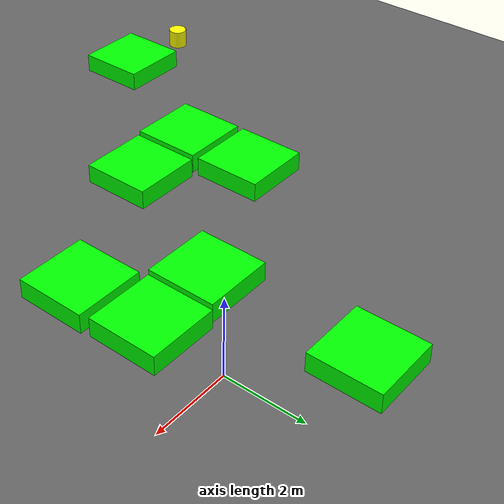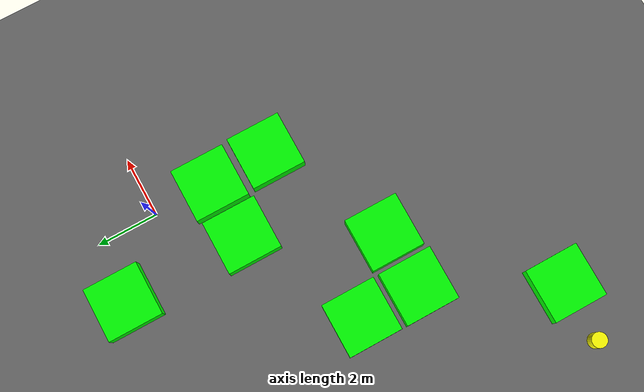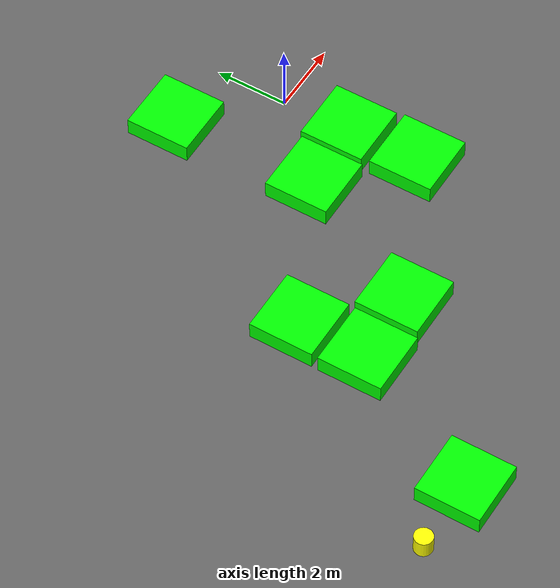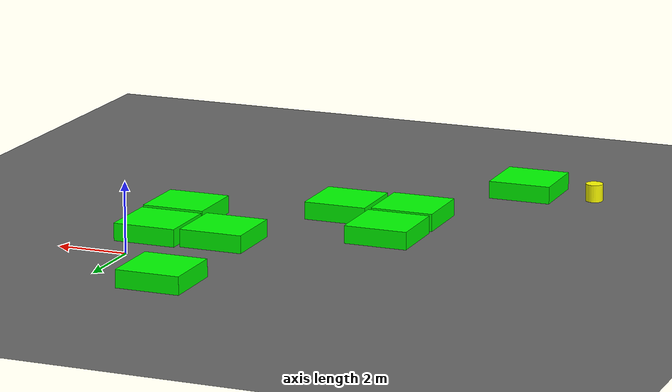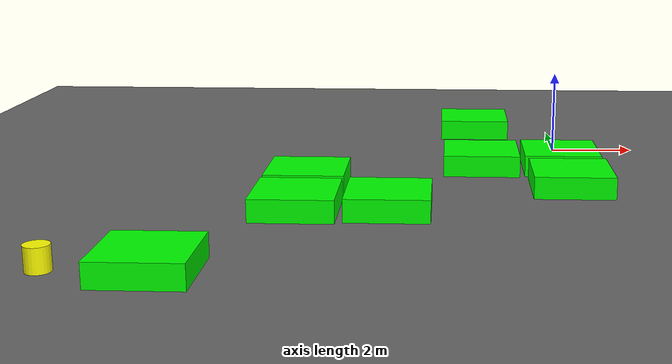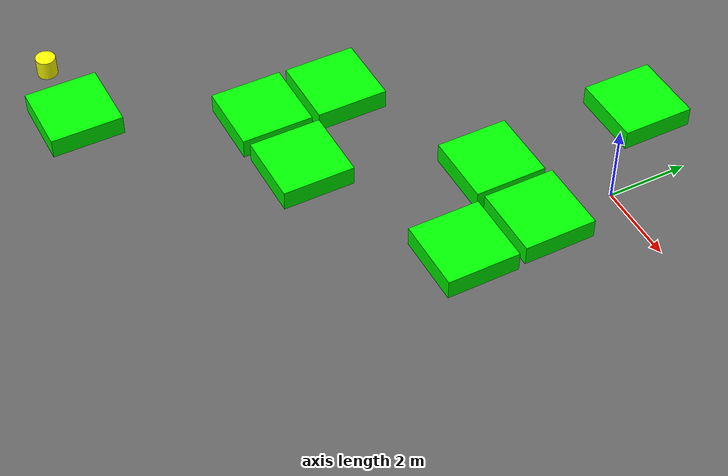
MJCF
<mujoco model="randommix_039_lvl0_standard_obs8_d3long_seed1092">
    <compiler angle="degree" coordinate="local" inertiafromgeom="true"/>
    <option integrator="RK4" timestep="0.01"/>

    <asset>
        <texture builtin="gradient" height="100" rgb1="0.6 0.8 1" rgb2="0 0 0" type="skybox" width="100"/>
        <texture name="floor_texture" type="2d" builtin="checker" width="100" height="100" rgb1="0 0 0" rgb2="0.8 0.8 0.8"/>
        <material name="MatPlane" reflectance="0.5" shininess="1" specular="1" texrepeat="10 10" texture="floor_texture"/>
    </asset>

    <!-- Excluding the contact between the agent and the goal, and the agent and the floor -->
    <contact>
        <exclude body1="agent" body2="goal"/>
        <exclude body1 = "agent" body2 = "floor"/>
    </contact>

    <extension>
        <plugin plugin = "mujoco.pid">
            <instance name = "pid1">
                <config key="kp" value="2"/>
                <config key="ki" value="0"/>
                <config key="kd" value="55"/>
            </instance>
        </plugin>
    </extension>

    <worldbody>
        <light cutoff="100" diffuse="1 1 1" dir="-0 0 -1.3" directional="true" exponent="1" pos="0 0 1.3" specular=".1 .1 .1"/>
        <body name="floor" pos="0 0 0">
            <geom name="floor_geom" type="plane" size="20 20 0.1" material="MatPlane"/>
        </body>

                <body name="goal" pos="0.0000 0.0000 0">
            <geom name="goal_geom" type="plane" size="0.5 0.5 1" pos="0 0 0" rgba="1 0 0 1"/>
        </body>

                <body name="agent" pos="-10.0000 -10.0000 0.250">
            <joint name="j1" type="slide" axis ="1 0 0 "/>
            <joint name="j2" type="slide" axis ="0 1 0 "/>
            <geom name="agent_geom" type="cylinder" size="0.25 0.25 0.250" rgba="1 1 0 1"/>
        </body>

        <body name="obstacle1" pos="-2.0221 2.0528 0.250">  <geom name="obstacle1_geom" type="box" size="0.9000 0.9000 0.250" rgba="0 1 0 1"/></body>
        <body name="obstacle2" pos="-1.9459 -2.0688 0.250">  <geom name="obstacle2_geom" type="box" size="0.9000 0.9000 0.250" rgba="0 1 0 1"/></body>
        <body name="obstacle3" pos="-0.0214 -1.9582 0.250">  <geom name="obstacle3_geom" type="box" size="0.9000 0.9000 0.250" rgba="0 1 0 1"/></body>
        <body name="obstacle4" pos="-5.9385 -4.0693 0.250">  <geom name="obstacle4_geom" type="box" size="0.9000 0.9000 0.250" rgba="0 1 0 1"/></body>
        <body name="obstacle5" pos="0.0434 -3.9617 0.250">  <geom name="obstacle5_geom" type="box" size="0.9000 0.9000 0.250" rgba="0 1 0 1"/></body>
        <body name="obstacle6" pos="-5.9467 -6.0451 0.250">  <geom name="obstacle6_geom" type="box" size="0.9000 0.9000 0.250" rgba="0 1 0 1"/></body>
        <body name="obstacle7" pos="-3.9933 -5.9429 0.250">  <geom name="obstacle7_geom" type="box" size="0.9000 0.9000 0.250" rgba="0 1 0 1"/></body>
        <body name="obstacle8" pos="-8.0298 -10.0157 0.250">  <geom name="obstacle8_geom" type="box" size="0.9000 0.9000 0.250" rgba="0 1 0 1"/></body>

    </worldbody>

    <sensor>
<!-- SENSORS -->

        <distance name="dist1" geom1="agent_geom" geom2="obstacle1_geom" cutoff="1.5"/>
        <distance name="dist2" geom1="agent_geom" geom2="obstacle2_geom" cutoff="1.5"/>
        <distance name="dist3" geom1="agent_geom" geom2="obstacle3_geom" cutoff="1.5"/>
        <distance name="dist4" geom1="agent_geom" geom2="obstacle4_geom" cutoff="1.5"/>
        <distance name="dist5" geom1="agent_geom" geom2="obstacle5_geom" cutoff="1.5"/>
        <distance name="dist6" geom1="agent_geom" geom2="obstacle6_geom" cutoff="1.5"/>
        <distance name="dist7" geom1="agent_geom" geom2="obstacle7_geom" cutoff="1.5"/>
        <distance name="dist8" geom1="agent_geom" geom2="obstacle8_geom" cutoff="1.5"/>
</sensor>

    <actuator>
        <plugin joint="j1" plugin="mujoco.pid" instance="pid1" />
        <plugin joint="j2" plugin="mujoco.pid" instance="pid1"/>
    </actuator>
</mujoco>
